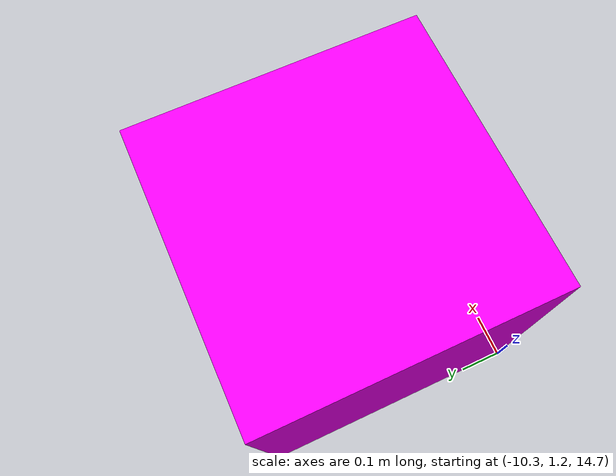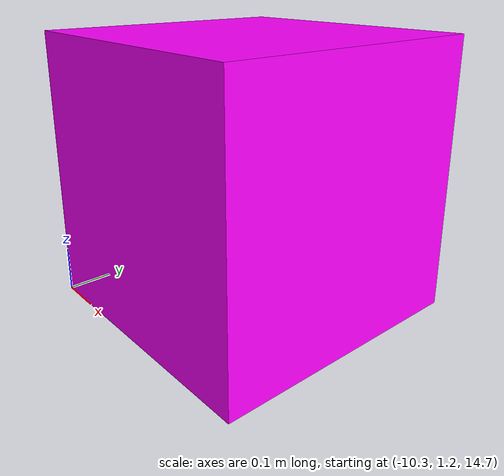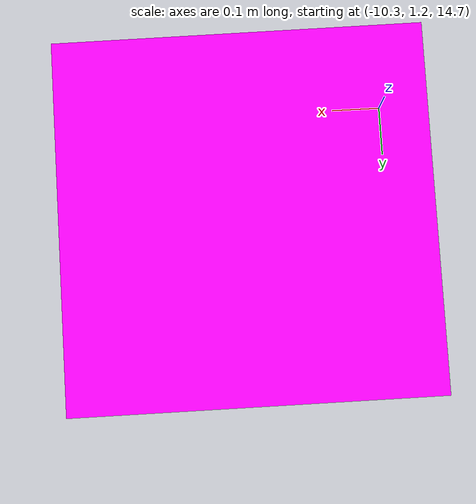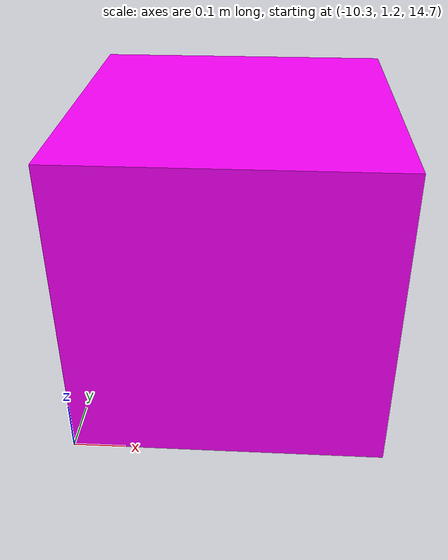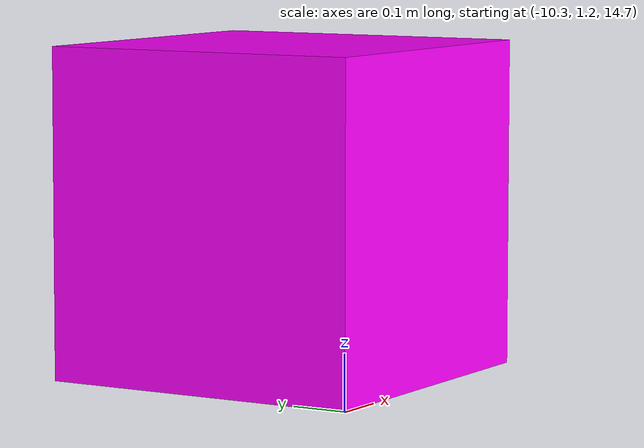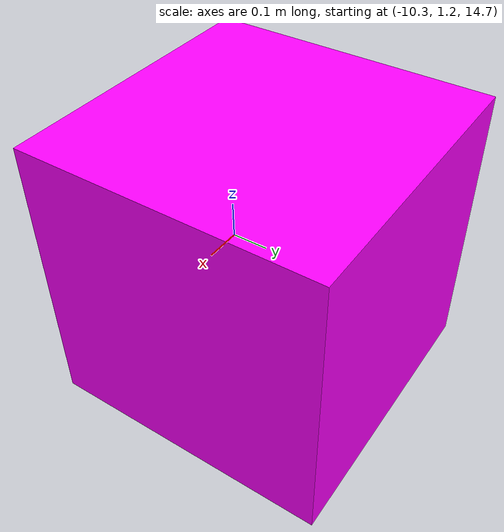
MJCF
<mujoco model="plane_field">
    <compiler angle="radian" coordinate="local" />
    <option gravity="0 0 -9.80 " />
    <worldbody>
        <!--geom type="plane" name="field" size="40 40 0.01" pos="0 30 -0.5" /-->
        <body name="Albert" pos="-10 1.5 15">
            <!-- inertial to enable physics -->
            <joint type="free" axis="0 0 0" pos="0 0 0" damping="1"/>
            <inertial pos="0 0 0" mass="10.0" diaginertia="0.001 0.001 0.001"/>
            <geom type="box" size=".3 .3 .3" pos="0 0 0" rgba="1 0 1 1" />
        </body>
    </worldbody>
</mujoco>
